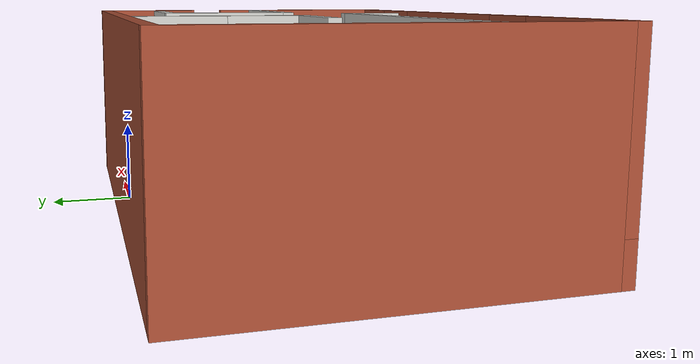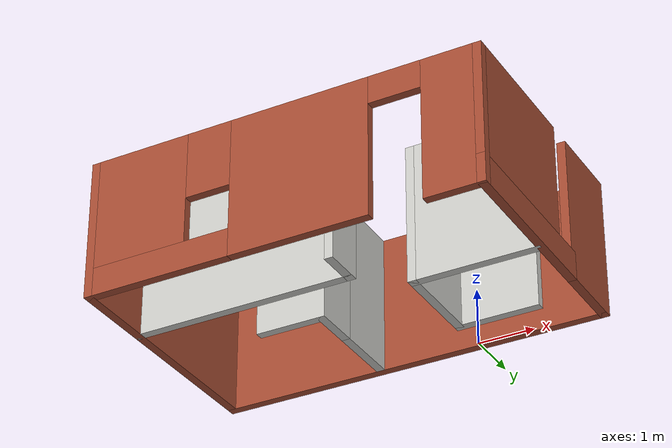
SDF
<?xml version='1.0'?>
<sdf version='1.7'>
  <model name='room1'>
    <pose>-1.285 -2.04496 0 0 -0 0</pose>
    <link name='Wall_10'>
      <collision name='Wall_10_Collision'>
        <geometry>
          <box>
            <size>1.25 0.15 2.5</size>
          </box>
        </geometry>
        <pose>0 0 1.25 0 -0 0</pose>
      </collision>
      <visual name='Wall_10_Visual'>
        <pose>0 0 1.25 0 -0 0</pose>
        <geometry>
          <box>
            <size>1.25 0.15 2.5</size>
          </box>
        </geometry>
        <material>
          <script>
            <uri>file://media/materials/scripts/gazebo.material</uri>
            <name>Gazebo/CeilingTiled</name>
          </script>
          <ambient>1 1 1 1</ambient>
        </material>
        <meta>
          <layer>0</layer>
        </meta>
      </visual>
      <pose>-0.544708 1.52607 0 0 -0 1.5708</pose>
    </link>
    <link name='Wall_12'>
      <collision name='Wall_12_Collision'>
        <geometry>
          <box>
            <size>1 0.15 2.5</size>
          </box>
        </geometry>
        <pose>0 0 1.25 0 -0 0</pose>
      </collision>
      <visual name='Wall_12_Visual'>
        <pose>0 0 1.25 0 -0 0</pose>
        <geometry>
          <box>
            <size>1 0.15 2.5</size>
          </box>
        </geometry>
        <material>
          <script>
            <uri>file://media/materials/scripts/gazebo.material</uri>
            <name>Gazebo/CeilingTiled</name>
          </script>
          <ambient>1 1 1 1</ambient>
        </material>
        <meta>
          <layer>0</layer>
        </meta>
      </visual>
      <pose>-0.544708 0.551071 0 0 -0 -1.5708</pose>
    </link>
    <link name='Wall_13'>
      <collision name='Wall_13_Collision'>
        <geometry>
          <box>
            <size>1.25 0.15 2.5</size>
          </box>
        </geometry>
        <pose>0 0 1.25 0 -0 0</pose>
      </collision>
      <visual name='Wall_13_Visual'>
        <pose>0 0 1.25 0 -0 0</pose>
        <geometry>
          <box>
            <size>1.25 0.15 2.5</size>
          </box>
        </geometry>
        <material>
          <script>
            <uri>file://media/materials/scripts/gazebo.material</uri>
            <name>Gazebo/CeilingTiled</name>
          </script>
          <ambient>1 1 1 1</ambient>
        </material>
        <meta>
          <layer>0</layer>
        </meta>
      </visual>
      <pose>-1.09471 0.126072 0 0 -0 3.14159</pose>
    </link>
    <link name='Wall_15'>
      <collision name='Wall_15_Collision'>
        <geometry>
          <box>
            <size>4 0.15 2.5</size>
          </box>
        </geometry>
        <pose>0 0 1.25 0 -0 0</pose>
      </collision>
      <visual name='Wall_15_Visual'>
        <pose>0 0 1.25 0 -0 0</pose>
        <geometry>
          <box>
            <size>4 0.15 2.5</size>
          </box>
        </geometry>
        <material>
          <script>
            <uri>file://media/materials/scripts/gazebo.material</uri>
            <name>Gazebo/CeilingTiled</name>
          </script>
          <ambient>1 1 1 1</ambient>
        </material>
        <meta>
          <layer>0</layer>
        </meta>
      </visual>
      <pose>-1.47631 -0.782854 0 0 -0 0</pose>
    </link>
    <link name='Wall_16'>
      <collision name='Wall_16_Collision'>
        <geometry>
          <box>
            <size>0.75 0.15 2.5</size>
          </box>
        </geometry>
        <pose>0 0 1.25 0 -0 0</pose>
      </collision>
      <visual name='Wall_16_Visual'>
        <pose>0 0 1.25 0 -0 0</pose>
        <geometry>
          <box>
            <size>0.75 0.15 2.5</size>
          </box>
        </geometry>
        <material>
          <script>
            <uri>file://media/materials/scripts/gazebo.material</uri>
            <name>Gazebo/CeilingTiled</name>
          </script>
          <ambient>1 1 1 1</ambient>
        </material>
        <meta>
          <layer>0</layer>
        </meta>
      </visual>
      <pose>0.448692 -1.08285 0 0 -0 -1.5708</pose>
    </link>
    <link name='Wall_18'>
      <collision name='Wall_18_Collision'>
        <geometry>
          <box>
            <size>2.25 0.15 2.5</size>
          </box>
        </geometry>
        <pose>0 0 1.25 0 -0 0</pose>
      </collision>
      <visual name='Wall_18_Visual'>
        <pose>0 0 1.25 0 -0 0</pose>
        <geometry>
          <box>
            <size>2.25 0.15 2.5</size>
          </box>
        </geometry>
        <material>
          <script>
            <uri>file://media/materials/scripts/gazebo.material</uri>
            <name>Gazebo/CeilingTiled</name>
          </script>
          <ambient>1 1 1 1</ambient>
        </material>
        <meta>
          <layer>0</layer>
        </meta>
      </visual>
      <pose>2.29344 -0.161278 0 0 -0 3.14159</pose>
    </link>
    <link name='Wall_19'>
      <collision name='Wall_19_Collision'>
        <geometry>
          <box>
            <size>1.75 0.15 2.5</size>
          </box>
        </geometry>
        <pose>0 0 1.25 0 -0 0</pose>
      </collision>
      <visual name='Wall_19_Visual'>
        <pose>0 0 1.25 0 -0 0</pose>
        <geometry>
          <box>
            <size>1.75 0.15 2.5</size>
          </box>
        </geometry>
        <material>
          <script>
            <uri>file://media/materials/scripts/gazebo.material</uri>
            <name>Gazebo/CeilingTiled</name>
          </script>
          <ambient>1 1 1 1</ambient>
        </material>
        <meta>
          <layer>0</layer>
        </meta>
      </visual>
      <pose>1.24344 0.638722 0 0 -0 1.5708</pose>
    </link>
    <link name='Wall_2'>
      <pose>3.425 -0.644877 0 0 -0 -1.5708</pose>
      <visual name='Wall_2_Visual_0'>
        <pose>0 0 0.25 0 -0 0</pose>
        <geometry>
          <box>
            <size>3.21044 0.15 0.5</size>
          </box>
        </geometry>
        <material>
          <script>
            <uri>file://media/materials/scripts/gazebo.material</uri>
            <name>Gazebo/Bricks</name>
          </script>
          <ambient>1 1 1 1</ambient>
        </material>
        <meta>
          <layer>0</layer>
        </meta>
      </visual>
      <collision name='Wall_2_Collision_0'>
        <geometry>
          <box>
            <size>3.21044 0.15 0.5</size>
          </box>
        </geometry>
        <pose>0 0 0.25 0 -0 0</pose>
      </collision>
      <visual name='Wall_2_Visual_1'>
        <pose>0.291323 0 1.5 0 -0 0</pose>
        <geometry>
          <box>
            <size>2.62779 0.15 2</size>
          </box>
        </geometry>
        <material>
          <script>
            <uri>file://media/materials/scripts/gazebo.material</uri>
            <name>Gazebo/Bricks</name>
          </script>
          <ambient>1 1 1 1</ambient>
        </material>
        <meta>
          <layer>0</layer>
        </meta>
      </visual>
      <collision name='Wall_2_Collision_1'>
        <geometry>
          <box>
            <size>2.62779 0.15 2</size>
          </box>
        </geometry>
        <pose>0.291323 0 1.5 0 -0 0</pose>
      </collision>
    </link>
    <link name='Wall_20'>
      <collision name='Wall_20_Collision'>
        <geometry>
          <box>
            <size>1.5 0.15 2.5</size>
          </box>
        </geometry>
        <pose>0 0 1.25 0 -0 0</pose>
      </collision>
      <visual name='Wall_20_Visual'>
        <pose>0 0 1.25 0 -0 0</pose>
        <geometry>
          <box>
            <size>1.5 0.15 2.5</size>
          </box>
        </geometry>
        <material>
          <script>
            <uri>file://media/materials/scripts/gazebo.material</uri>
            <name>Gazebo/CeilingTiled</name>
          </script>
          <ambient>1 1 1 1</ambient>
        </material>
        <meta>
          <layer>0</layer>
        </meta>
      </visual>
      <pose>1.91844 1.43872 0 0 -0 0</pose>
    </link>
    <link name='Wall_5'>
      <pose>0 -2.17504 0 0 -0 3.14159</pose>
      <visual name='Wall_5_Visual_0'>
        <pose>-2.98547 0 1.25 0 -0 0</pose>
        <geometry>
          <box>
            <size>1.02906 0.15 2.5</size>
          </box>
        </geometry>
        <material>
          <script>
            <uri>file://media/materials/scripts/gazebo.material</uri>
            <name>Gazebo/Bricks</name>
          </script>
          <ambient>1 1 1 1</ambient>
        </material>
        <meta>
          <layer>0</layer>
        </meta>
      </visual>
      <collision name='Wall_5_Collision_0'>
        <geometry>
          <box>
            <size>1.02906 0.15 2.5</size>
          </box>
        </geometry>
        <pose>-2.98547 0 1.25 0 -0 0</pose>
      </collision>
      <visual name='Wall_5_Visual_1'>
        <pose>-0.34943 0 1.25 0 -0 0</pose>
        <geometry>
          <box>
            <size>2.44303 0.15 2.5</size>
          </box>
        </geometry>
        <material>
          <script>
            <uri>file://media/materials/scripts/gazebo.material</uri>
            <name>Gazebo/Bricks</name>
          </script>
          <ambient>1 1 1 1</ambient>
        </material>
        <meta>
          <layer>0</layer>
        </meta>
      </visual>
      <collision name='Wall_5_Collision_1'>
        <geometry>
          <box>
            <size>2.44303 0.15 2.5</size>
          </box>
        </geometry>
        <pose>-0.34943 0 1.25 0 -0 0</pose>
      </collision>
      <visual name='Wall_5_Visual_2'>
        <pose>2.18604 0 0.25 0 -0 0</pose>
        <geometry>
          <box>
            <size>2.62792 0.15 0.5</size>
          </box>
        </geometry>
        <material>
          <script>
            <uri>file://media/materials/scripts/gazebo.material</uri>
            <name>Gazebo/Bricks</name>
          </script>
          <ambient>1 1 1 1</ambient>
        </material>
        <meta>
          <layer>0</layer>
        </meta>
      </visual>
      <collision name='Wall_5_Collision_2'>
        <geometry>
          <box>
            <size>2.62792 0.15 0.5</size>
          </box>
        </geometry>
        <pose>2.18604 0 0.25 0 -0 0</pose>
      </collision>
      <visual name='Wall_5_Visual_3'>
        <pose>2.58604 0 1.5 0 -0 0</pose>
        <geometry>
          <box>
            <size>1.82792 0.15 2</size>
          </box>
        </geometry>
        <material>
          <script>
            <uri>file://media/materials/scripts/gazebo.material</uri>
            <name>Gazebo/Bricks</name>
          </script>
          <ambient>1 1 1 1</ambient>
        </material>
        <meta>
          <layer>0</layer>
        </meta>
      </visual>
      <collision name='Wall_5_Collision_3'>
        <geometry>
          <box>
            <size>1.82792 0.15 2</size>
          </box>
        </geometry>
        <pose>2.58604 0 1.5 0 -0 0</pose>
      </collision>
      <visual name='Wall_5_Visual_4'>
        <pose>1.27208 0 1.9 0 -0 0</pose>
        <geometry>
          <box>
            <size>0.8 0.15 1.2</size>
          </box>
        </geometry>
        <material>
          <script>
            <uri>file://media/materials/scripts/gazebo.material</uri>
            <name>Gazebo/Bricks</name>
          </script>
          <ambient>1 1 1 1</ambient>
        </material>
        <meta>
          <layer>0</layer>
        </meta>
      </visual>
      <collision name='Wall_5_Collision_4'>
        <geometry>
          <box>
            <size>0.8 0.15 1.2</size>
          </box>
        </geometry>
        <pose>1.27208 0 1.9 0 -0 0</pose>
      </collision>
      <visual name='Wall_5_Visual_5'>
        <pose>-2.02094 0 2.25 0 -0 0</pose>
        <geometry>
          <box>
            <size>0.9 0.15 0.5</size>
          </box>
        </geometry>
        <material>
          <script>
            <uri>file://media/materials/scripts/gazebo.material</uri>
            <name>Gazebo/Bricks</name>
          </script>
          <ambient>1 1 1 1</ambient>
        </material>
        <meta>
          <layer>0</layer>
        </meta>
      </visual>
      <collision name='Wall_5_Collision_5'>
        <geometry>
          <box>
            <size>0.9 0.15 0.5</size>
          </box>
        </geometry>
        <pose>-2.02094 0 2.25 0 -0 0</pose>
      </collision>
    </link>
    <link name='Wall_6'>
      <collision name='Wall_6_Collision'>
        <geometry>
          <box>
            <size>4.5 0.15 2.5</size>
          </box>
        </geometry>
        <pose>0 0 1.25 0 -0 0</pose>
      </collision>
      <visual name='Wall_6_Visual'>
        <pose>0 0 1.25 0 -0 0</pose>
        <geometry>
          <box>
            <size>4.5 0.15 2.5</size>
          </box>
        </geometry>
        <material>
          <script>
            <uri>file://media/materials/scripts/gazebo.material</uri>
            <name>Gazebo/Bricks</name>
          </script>
          <ambient>1 1 1 1</ambient>
        </material>
        <meta>
          <layer>0</layer>
        </meta>
      </visual>
      <pose>-3.425 -3.9e-05 0 0 -0 1.5708</pose>
    </link>
    <link name='Wall_7'>
      <collision name='Wall_7_Collision'>
        <geometry>
          <box>
            <size>7 0.15 2.5</size>
          </box>
        </geometry>
        <pose>0 0 1.25 0 -0 0</pose>
      </collision>
      <visual name='Wall_7_Visual'>
        <pose>0 0 1.25 0 -0 0</pose>
        <geometry>
          <box>
            <size>7 0.15 2.5</size>
          </box>
        </geometry>
        <material>
          <script>
            <uri>file://media/materials/scripts/gazebo.material</uri>
            <name>Gazebo/Bricks</name>
          </script>
          <ambient>1 1 1 1</ambient>
        </material>
        <meta>
          <layer>0</layer>
        </meta>
      </visual>
      <pose>0 2.17496 0 0 -0 0</pose>
    </link>
    <link name='Wall_8'>
      <collision name='Wall_8_Collision'>
        <geometry>
          <box>
            <size>1.43995 0.15 2.5</size>
          </box>
        </geometry>
        <pose>0 0 1.25 0 -0 0</pose>
      </collision>
      <visual name='Wall_8_Visual'>
        <pose>0 0 1.25 0 -0 0</pose>
        <geometry>
          <box>
            <size>1.43995 0.15 2.5</size>
          </box>
        </geometry>
        <material>
          <script>
            <uri>file://media/materials/scripts/gazebo.material</uri>
            <name>Gazebo/Bricks</name>
          </script>
          <ambient>1 1 1 1</ambient>
        </material>
        <meta>
          <layer>0</layer>
        </meta>
      </visual>
      <pose>3.425 1.53012 0 0 -0 -1.5708</pose>
    </link>
    <static>1</static>
  </model>
</sdf>
